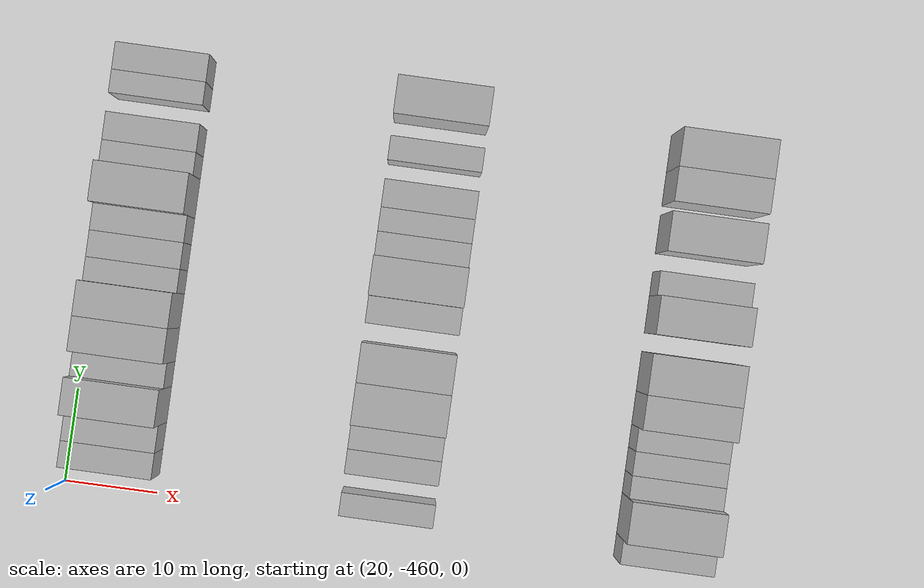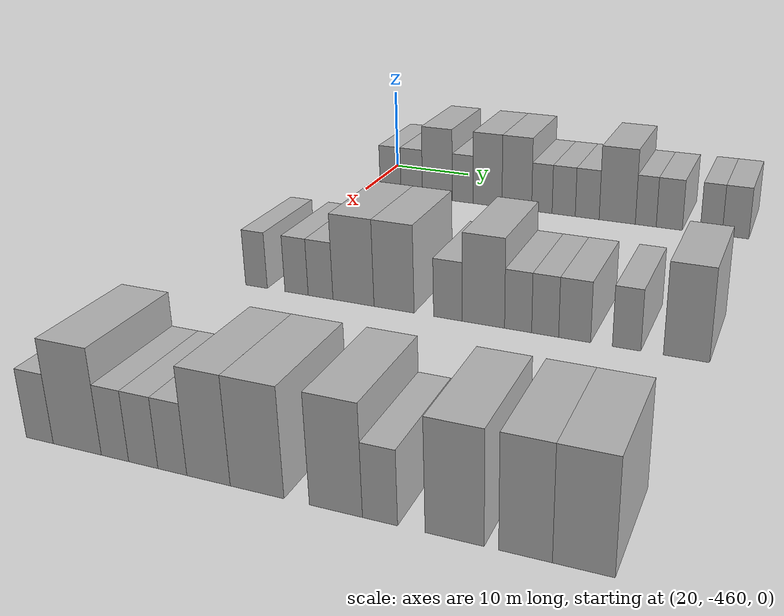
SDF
<sdf version="1.6">
 <world name="default">
  <model name="building_1">
   <static>1</static>
   <pose>25.0000 -456.5878 0 0.000000 0.000000 0.000000</pose>
   <link name="link">
    <pose>0 0 3.00 0 0 0</pose>
    <collision name="collision"><geometry><box><size>10.0000 2.8245 6.0000</size></box></geometry></collision>
    <visual name="visual">
     <cast_shadows>0</cast_shadows>
     <geometry><box><size>10.0000 2.8245 6.0000</size></box></geometry>
     <material>
      <script>
       <uri>model://HANNAS_wall/materials/scripts</uri>
       <uri>model://HANNAS_wall/materials/textures</uri>
       <name>vrc/HANNAS_wall</name>
      </script>
     </material>
    </visual>
   </link>
  </model>
  <model name="building_2">
   <static>1</static>
   <pose>25.0000 -453.7290 0 0.000000 0.000000 0.000000</pose>
   <link name="link">
    <pose>0 0 3.00 0 0 0</pose>
    <collision name="collision"><geometry><box><size>10.0000 2.8931 6.0000</size></box></geometry></collision>
    <visual name="visual">
     <cast_shadows>0</cast_shadows>
     <geometry><box><size>10.0000 2.8931 6.0000</size></box></geometry>
     <material>
      <script>
       <uri>model://HANNAS_wall/materials/scripts</uri>
       <uri>model://HANNAS_wall/materials/textures</uri>
       <name>vrc/HANNAS_wall</name>
      </script>
     </material>
    </visual>
   </link>
  </model>
  <model name="building_3">
   <static>1</static>
   <pose>25.0000 -450.3081 0 0.000000 0.000000 0.000000</pose>
   <link name="link">
    <pose>0 0 4.50 0 0 0</pose>
    <collision name="collision"><geometry><box><size>10.0000 3.9486 9.0000</size></box></geometry></collision>
    <visual name="visual">
     <cast_shadows>0</cast_shadows>
     <geometry><box><size>10.0000 3.9486 9.0000</size></box></geometry>
     <material>
      <script>
       <uri>model://HANNAS_wall/materials/scripts</uri>
       <uri>model://HANNAS_wall/materials/textures</uri>
       <name>vrc/HANNAS_wall</name>
      </script>
     </material>
    </visual>
   </link>
  </model>
  <model name="building_4">
   <static>1</static>
   <pose>25.0000 -446.9821 0 0.000000 0.000000 0.000000</pose>
   <link name="link">
    <pose>0 0 3.00 0 0 0</pose>
    <collision name="collision"><geometry><box><size>10.0000 2.7034 6.0000</size></box></geometry></collision>
    <visual name="visual">
     <cast_shadows>0</cast_shadows>
     <geometry><box><size>10.0000 2.7034 6.0000</size></box></geometry>
     <material>
      <script>
       <uri>model://HANNAS_wall/materials/scripts</uri>
       <uri>model://HANNAS_wall/materials/textures</uri>
       <name>vrc/HANNAS_wall</name>
      </script>
     </material>
    </visual>
   </link>
  </model>
  <model name="building_5">
   <static>1</static>
   <pose>25.0000 -443.7848 0 0.000000 0.000000 0.000000</pose>
   <link name="link">
    <pose>0 0 4.50 0 0 0</pose>
    <collision name="collision"><geometry><box><size>10.0000 3.6912 9.0000</size></box></geometry></collision>
    <visual name="visual">
     <cast_shadows>0</cast_shadows>
     <geometry><box><size>10.0000 3.6912 9.0000</size></box></geometry>
     <material>
      <script>
       <uri>model://HANNAS_wall/materials/scripts</uri>
       <uri>model://HANNAS_wall/materials/textures</uri>
       <name>vrc/HANNAS_wall</name>
      </script>
     </material>
    </visual>
   </link>
  </model>
  <model name="building_6">
   <static>1</static>
   <pose>25.0000 -440.0766 0 0.000000 0.000000 0.000000</pose>
   <link name="link">
    <pose>0 0 4.50 0 0 0</pose>
    <collision name="collision"><geometry><box><size>10.0000 3.7251 9.0000</size></box></geometry></collision>
    <visual name="visual">
     <cast_shadows>0</cast_shadows>
     <geometry><box><size>10.0000 3.7251 9.0000</size></box></geometry>
     <material>
      <script>
       <uri>model://HANNAS_wall/materials/scripts</uri>
       <uri>model://HANNAS_wall/materials/textures</uri>
       <name>vrc/HANNAS_wall</name>
      </script>
     </material>
    </visual>
   </link>
  </model>
  <model name="building_7">
   <static>1</static>
   <pose>25.0000 -436.9483 0 0.000000 0.000000 0.000000</pose>
   <link name="link">
    <pose>0 0 3.00 0 0 0</pose>
    <collision name="collision"><geometry><box><size>10.0000 2.5317 6.0000</size></box></geometry></collision>
    <visual name="visual">
     <cast_shadows>0</cast_shadows>
     <geometry><box><size>10.0000 2.5317 6.0000</size></box></geometry>
     <material>
      <script>
       <uri>model://HANNAS_wall/materials/scripts</uri>
       <uri>model://HANNAS_wall/materials/textures</uri>
       <name>vrc/HANNAS_wall</name>
      </script>
     </material>
    </visual>
   </link>
  </model>
  <model name="building_8">
   <static>1</static>
   <pose>25.0000 -434.2681 0 0.000000 0.000000 0.000000</pose>
   <link name="link">
    <pose>0 0 3.00 0 0 0</pose>
    <collision name="collision"><geometry><box><size>10.0000 2.8287 6.0000</size></box></geometry></collision>
    <visual name="visual">
     <cast_shadows>0</cast_shadows>
     <geometry><box><size>10.0000 2.8287 6.0000</size></box></geometry>
     <material>
      <script>
       <uri>model://HANNAS_wall/materials/scripts</uri>
       <uri>model://HANNAS_wall/materials/textures</uri>
       <name>vrc/HANNAS_wall</name>
      </script>
     </material>
    </visual>
   </link>
  </model>
  <model name="building_9">
   <static>1</static>
   <pose>25.0000 -431.4158 0 0.000000 0.000000 0.000000</pose>
   <link name="link">
    <pose>0 0 3.00 0 0 0</pose>
    <collision name="collision"><geometry><box><size>10.0000 2.8757 6.0000</size></box></geometry></collision>
    <visual name="visual">
     <cast_shadows>0</cast_shadows>
     <geometry><box><size>10.0000 2.8757 6.0000</size></box></geometry>
     <material>
      <script>
       <uri>model://HANNAS_wall/materials/scripts</uri>
       <uri>model://HANNAS_wall/materials/textures</uri>
       <name>vrc/HANNAS_wall</name>
      </script>
     </material>
    </visual>
   </link>
  </model>
  <model name="building_10">
   <static>1</static>
   <pose>25.0000 -427.8407 0 0.000000 0.000000 0.000000</pose>
   <link name="link">
    <pose>0 0 4.50 0 0 0</pose>
    <collision name="collision"><geometry><box><size>10.0000 4.2745 9.0000</size></box></geometry></collision>
    <visual name="visual">
     <cast_shadows>0</cast_shadows>
     <geometry><box><size>10.0000 4.2745 9.0000</size></box></geometry>
     <material>
      <script>
       <uri>model://HANNAS_wall/materials/scripts</uri>
       <uri>model://HANNAS_wall/materials/textures</uri>
       <name>vrc/HANNAS_wall</name>
      </script>
     </material>
    </visual>
   </link>
  </model>
  <model name="building_11">
   <static>1</static>
   <pose>25.0000 -424.4925 0 0.000000 0.000000 0.000000</pose>
   <link name="link">
    <pose>0 0 3.00 0 0 0</pose>
    <collision name="collision"><geometry><box><size>10.0000 2.4220 6.0000</size></box></geometry></collision>
    <visual name="visual">
     <cast_shadows>0</cast_shadows>
     <geometry><box><size>10.0000 2.4220 6.0000</size></box></geometry>
     <material>
      <script>
       <uri>model://HANNAS_wall/materials/scripts</uri>
       <uri>model://HANNAS_wall/materials/textures</uri>
       <name>vrc/HANNAS_wall</name>
      </script>
     </material>
    </visual>
   </link>
  </model>
  <model name="building_12">
   <static>1</static>
   <pose>25.0000 -421.7866 0 0.000000 0.000000 0.000000</pose>
   <link name="link">
    <pose>0 0 3.00 0 0 0</pose>
    <collision name="collision"><geometry><box><size>10.0000 2.9898 6.0000</size></box></geometry></collision>
    <visual name="visual">
     <cast_shadows>0</cast_shadows>
     <geometry><box><size>10.0000 2.9898 6.0000</size></box></geometry>
     <material>
      <script>
       <uri>model://HANNAS_wall/materials/scripts</uri>
       <uri>model://HANNAS_wall/materials/textures</uri>
       <name>vrc/HANNAS_wall</name>
      </script>
     </material>
    </visual>
   </link>
  </model>
  <model name="building_13">
   <static>1</static>
   <pose>25.0000 -417.0590 0 0.000000 0.000000 0.000000</pose>
   <link name="link">
    <pose>0 0 3.00 0 0 0</pose>
    <collision name="collision"><geometry><box><size>10.0000 2.4655 6.0000</size></box></geometry></collision>
    <visual name="visual">
     <cast_shadows>0</cast_shadows>
     <geometry><box><size>10.0000 2.4655 6.0000</size></box></geometry>
     <material>
      <script>
       <uri>model://HANNAS_wall/materials/scripts</uri>
       <uri>model://HANNAS_wall/materials/textures</uri>
       <name>vrc/HANNAS_wall</name>
      </script>
     </material>
    </visual>
   </link>
  </model>
  <model name="building_14">
   <static>1</static>
   <pose>25.0000 -414.3582 0 0.000000 0.000000 0.000000</pose>
   <link name="link">
    <pose>0 0 3.00 0 0 0</pose>
    <collision name="collision"><geometry><box><size>10.0000 2.9362 6.0000</size></box></geometry></collision>
    <visual name="visual">
     <cast_shadows>0</cast_shadows>
     <geometry><box><size>10.0000 2.9362 6.0000</size></box></geometry>
     <material>
      <script>
       <uri>model://HANNAS_wall/materials/scripts</uri>
       <uri>model://HANNAS_wall/materials/textures</uri>
       <name>vrc/HANNAS_wall</name>
      </script>
     </material>
    </visual>
   </link>
  </model>
  <model name="building_240">
   <static>1</static>
   <pose>55.0000 -457.7602 0 0.000000 0.000000 0.000000</pose>
   <link name="link">
    <pose>0 0 3.00 0 0 0</pose>
    <collision name="collision"><geometry><box><size>10.0000 2.4796 6.0000</size></box></geometry></collision>
    <visual name="visual">
     <cast_shadows>0</cast_shadows>
     <geometry><box><size>10.0000 2.4796 6.0000</size></box></geometry>
     <material>
      <script>
       <uri>model://HANNAS_wall/materials/scripts</uri>
       <uri>model://HANNAS_wall/materials/textures</uri>
       <name>vrc/HANNAS_wall</name>
      </script>
     </material>
    </visual>
   </link>
  </model>
  <model name="building_241">
   <static>1</static>
   <pose>55.0000 -453.2183 0 0.000000 0.000000 0.000000</pose>
   <link name="link">
    <pose>0 0 3.00 0 0 0</pose>
    <collision name="collision"><geometry><box><size>10.0000 2.6042 6.0000</size></box></geometry></collision>
    <visual name="visual">
     <cast_shadows>0</cast_shadows>
     <geometry><box><size>10.0000 2.6042 6.0000</size></box></geometry>
     <material>
      <script>
       <uri>model://HANNAS_wall/materials/scripts</uri>
       <uri>model://HANNAS_wall/materials/textures</uri>
       <name>vrc/HANNAS_wall</name>
      </script>
     </material>
    </visual>
   </link>
  </model>
  <model name="building_242">
   <static>1</static>
   <pose>55.0000 -450.5517 0 0.000000 0.000000 0.000000</pose>
   <link name="link">
    <pose>0 0 3.00 0 0 0</pose>
    <collision name="collision"><geometry><box><size>10.0000 2.7290 6.0000</size></box></geometry></collision>
    <visual name="visual">
     <cast_shadows>0</cast_shadows>
     <geometry><box><size>10.0000 2.7290 6.0000</size></box></geometry>
     <material>
      <script>
       <uri>model://HANNAS_wall/materials/scripts</uri>
       <uri>model://HANNAS_wall/materials/textures</uri>
       <name>vrc/HANNAS_wall</name>
      </script>
     </material>
    </visual>
   </link>
  </model>
  <model name="building_243">
   <static>1</static>
   <pose>55.0000 -446.9739 0 0.000000 0.000000 0.000000</pose>
   <link name="link">
    <pose>0 0 4.50 0 0 0</pose>
    <collision name="collision"><geometry><box><size>10.0000 4.4268 9.0000</size></box></geometry></collision>
    <visual name="visual">
     <cast_shadows>0</cast_shadows>
     <geometry><box><size>10.0000 4.4268 9.0000</size></box></geometry>
     <material>
      <script>
       <uri>model://HANNAS_wall/materials/scripts</uri>
       <uri>model://HANNAS_wall/materials/textures</uri>
       <name>vrc/HANNAS_wall</name>
      </script>
     </material>
    </visual>
   </link>
  </model>
  <model name="building_244">
   <static>1</static>
   <pose>55.0000 -442.6541 0 0.000000 0.000000 0.000000</pose>
   <link name="link">
    <pose>0 0 4.50 0 0 0</pose>
    <collision name="collision"><geometry><box><size>10.0000 4.2127 9.0000</size></box></geometry></collision>
    <visual name="visual">
     <cast_shadows>0</cast_shadows>
     <geometry><box><size>10.0000 4.2127 9.0000</size></box></geometry>
     <material>
      <script>
       <uri>model://HANNAS_wall/materials/scripts</uri>
       <uri>model://HANNAS_wall/materials/textures</uri>
       <name>vrc/HANNAS_wall</name>
      </script>
     </material>
    </visual>
   </link>
  </model>
  <model name="building_245">
   <static>1</static>
   <pose>55.0000 -437.0961 0 0.000000 0.000000 0.000000</pose>
   <link name="link">
    <pose>0 0 3.00 0 0 0</pose>
    <collision name="collision"><geometry><box><size>10.0000 2.9034 6.0000</size></box></geometry></collision>
    <visual name="visual">
     <cast_shadows>0</cast_shadows>
     <geometry><box><size>10.0000 2.9034 6.0000</size></box></geometry>
     <material>
      <script>
       <uri>model://HANNAS_wall/materials/scripts</uri>
       <uri>model://HANNAS_wall/materials/textures</uri>
       <name>vrc/HANNAS_wall</name>
      </script>
     </material>
    </visual>
   </link>
  </model>
  <model name="building_246">
   <static>1</static>
   <pose>55.0000 -433.5494 0 0.000000 0.000000 0.000000</pose>
   <link name="link">
    <pose>0 0 4.50 0 0 0</pose>
    <collision name="collision"><geometry><box><size>10.0000 4.1899 9.0000</size></box></geometry></collision>
    <visual name="visual">
     <cast_shadows>0</cast_shadows>
     <geometry><box><size>10.0000 4.1899 9.0000</size></box></geometry>
     <material>
      <script>
       <uri>model://HANNAS_wall/materials/scripts</uri>
       <uri>model://HANNAS_wall/materials/textures</uri>
       <name>vrc/HANNAS_wall</name>
      </script>
     </material>
    </visual>
   </link>
  </model>
  <model name="building_247">
   <static>1</static>
   <pose>55.0000 -430.1438 0 0.000000 0.000000 0.000000</pose>
   <link name="link">
    <pose>0 0 3.00 0 0 0</pose>
    <collision name="collision"><geometry><box><size>10.0000 2.6214 6.0000</size></box></geometry></collision>
    <visual name="visual">
     <cast_shadows>0</cast_shadows>
     <geometry><box><size>10.0000 2.6214 6.0000</size></box></geometry>
     <material>
      <script>
       <uri>model://HANNAS_wall/materials/scripts</uri>
       <uri>model://HANNAS_wall/materials/textures</uri>
       <name>vrc/HANNAS_wall</name>
      </script>
     </material>
    </visual>
   </link>
  </model>
  <model name="building_248">
   <static>1</static>
   <pose>55.0000 -427.5492 0 0.000000 0.000000 0.000000</pose>
   <link name="link">
    <pose>0 0 3.00 0 0 0</pose>
    <collision name="collision"><geometry><box><size>10.0000 2.5678 6.0000</size></box></geometry></collision>
    <visual name="visual">
     <cast_shadows>0</cast_shadows>
     <geometry><box><size>10.0000 2.5678 6.0000</size></box></geometry>
     <material>
      <script>
       <uri>model://HANNAS_wall/materials/scripts</uri>
       <uri>model://HANNAS_wall/materials/textures</uri>
       <name>vrc/HANNAS_wall</name>
      </script>
     </material>
    </visual>
   </link>
  </model>
  <model name="building_249">
   <static>1</static>
   <pose>55.0000 -424.7708 0 0.000000 0.000000 0.000000</pose>
   <link name="link">
    <pose>0 0 3.00 0 0 0</pose>
    <collision name="collision"><geometry><box><size>10.0000 2.9891 6.0000</size></box></geometry></collision>
    <visual name="visual">
     <cast_shadows>0</cast_shadows>
     <geometry><box><size>10.0000 2.9891 6.0000</size></box></geometry>
     <material>
      <script>
       <uri>model://HANNAS_wall/materials/scripts</uri>
       <uri>model://HANNAS_wall/materials/textures</uri>
       <name>vrc/HANNAS_wall</name>
      </script>
     </material>
    </visual>
   </link>
  </model>
  <model name="building_250">
   <static>1</static>
   <pose>55.0000 -419.9841 0 0.000000 0.000000 0.000000</pose>
   <link name="link">
    <pose>0 0 3.00 0 0 0</pose>
    <collision name="collision"><geometry><box><size>10.0000 2.5843 6.0000</size></box></geometry></collision>
    <visual name="visual">
     <cast_shadows>0</cast_shadows>
     <geometry><box><size>10.0000 2.5843 6.0000</size></box></geometry>
     <material>
      <script>
       <uri>model://HANNAS_wall/materials/scripts</uri>
       <uri>model://HANNAS_wall/materials/textures</uri>
       <name>vrc/HANNAS_wall</name>
      </script>
     </material>
    </visual>
   </link>
  </model>
  <model name="building_251">
   <static>1</static>
   <pose>55.0000 -414.6680 0 0.000000 0.000000 0.000000</pose>
   <link name="link">
    <pose>0 0 4.50 0 0 0</pose>
    <collision name="collision"><geometry><box><size>10.0000 4.0478 9.0000</size></box></geometry></collision>
    <visual name="visual">
     <cast_shadows>0</cast_shadows>
     <geometry><box><size>10.0000 4.0478 9.0000</size></box></geometry>
     <material>
      <script>
       <uri>model://HANNAS_wall/materials/scripts</uri>
       <uri>model://HANNAS_wall/materials/textures</uri>
       <name>vrc/HANNAS_wall</name>
      </script>
     </material>
    </visual>
   </link>
  </model>
  <model name="building_479">
   <static>1</static>
   <pose>85.0000 -458.7347 0 0.000000 0.000000 0.000000</pose>
   <link name="link">
    <pose>0 0 3.00 0 0 0</pose>
    <collision name="collision"><geometry><box><size>10.0000 2.5305 6.0000</size></box></geometry></collision>
    <visual name="visual">
     <cast_shadows>0</cast_shadows>
     <geometry><box><size>10.0000 2.5305 6.0000</size></box></geometry>
     <material>
      <script>
       <uri>model://HANNAS_wall/materials/scripts</uri>
       <uri>model://HANNAS_wall/materials/textures</uri>
       <name>vrc/HANNAS_wall</name>
      </script>
     </material>
    </visual>
   </link>
  </model>
  <model name="building_480">
   <static>1</static>
   <pose>85.0000 -455.2579 0 0.000000 0.000000 0.000000</pose>
   <link name="link">
    <pose>0 0 4.50 0 0 0</pose>
    <collision name="collision"><geometry><box><size>10.0000 4.4231 9.0000</size></box></geometry></collision>
    <visual name="visual">
     <cast_shadows>0</cast_shadows>
     <geometry><box><size>10.0000 4.4231 9.0000</size></box></geometry>
     <material>
      <script>
       <uri>model://HANNAS_wall/materials/scripts</uri>
       <uri>model://HANNAS_wall/materials/textures</uri>
       <name>vrc/HANNAS_wall</name>
      </script>
     </material>
    </visual>
   </link>
  </model>
  <model name="building_481">
   <static>1</static>
   <pose>85.0000 -451.8257 0 0.000000 0.000000 0.000000</pose>
   <link name="link">
    <pose>0 0 3.00 0 0 0</pose>
    <collision name="collision"><geometry><box><size>10.0000 2.4412 6.0000</size></box></geometry></collision>
    <visual name="visual">
     <cast_shadows>0</cast_shadows>
     <geometry><box><size>10.0000 2.4412 6.0000</size></box></geometry>
     <material>
      <script>
       <uri>model://HANNAS_wall/materials/scripts</uri>
       <uri>model://HANNAS_wall/materials/textures</uri>
       <name>vrc/HANNAS_wall</name>
      </script>
     </material>
    </visual>
   </link>
  </model>
  <model name="building_482">
   <static>1</static>
   <pose>85.0000 -449.3230 0 0.000000 0.000000 0.000000</pose>
   <link name="link">
    <pose>0 0 3.00 0 0 0</pose>
    <collision name="collision"><geometry><box><size>10.0000 2.5644 6.0000</size></box></geometry></collision>
    <visual name="visual">
     <cast_shadows>0</cast_shadows>
     <geometry><box><size>10.0000 2.5644 6.0000</size></box></geometry>
     <material>
      <script>
       <uri>model://HANNAS_wall/materials/scripts</uri>
       <uri>model://HANNAS_wall/materials/textures</uri>
       <name>vrc/HANNAS_wall</name>
      </script>
     </material>
    </visual>
   </link>
  </model>
  <model name="building_483">
   <static>1</static>
   <pose>85.0000 -446.7998 0 0.000000 0.000000 0.000000</pose>
   <link name="link">
    <pose>0 0 3.00 0 0 0</pose>
    <collision name="collision"><geometry><box><size>10.0000 2.4819 6.0000</size></box></geometry></collision>
    <visual name="visual">
     <cast_shadows>0</cast_shadows>
     <geometry><box><size>10.0000 2.4819 6.0000</size></box></geometry>
     <material>
      <script>
       <uri>model://HANNAS_wall/materials/scripts</uri>
       <uri>model://HANNAS_wall/materials/textures</uri>
       <name>vrc/HANNAS_wall</name>
      </script>
     </material>
    </visual>
   </link>
  </model>
  <model name="building_484">
   <static>1</static>
   <pose>85.0000 -443.7441 0 0.000000 0.000000 0.000000</pose>
   <link name="link">
    <pose>0 0 4.50 0 0 0</pose>
    <collision name="collision"><geometry><box><size>10.0000 3.6295 9.0000</size></box></geometry></collision>
    <visual name="visual">
     <cast_shadows>0</cast_shadows>
     <geometry><box><size>10.0000 3.6295 9.0000</size></box></geometry>
     <material>
      <script>
       <uri>model://HANNAS_wall/materials/scripts</uri>
       <uri>model://HANNAS_wall/materials/textures</uri>
       <name>vrc/HANNAS_wall</name>
      </script>
     </material>
    </visual>
   </link>
  </model>
  <model name="building_485">
   <static>1</static>
   <pose>85.0000 -439.7556 0 0.000000 0.000000 0.000000</pose>
   <link name="link">
    <pose>0 0 4.50 0 0 0</pose>
    <collision name="collision"><geometry><box><size>10.0000 4.3473 9.0000</size></box></geometry></collision>
    <visual name="visual">
     <cast_shadows>0</cast_shadows>
     <geometry><box><size>10.0000 4.3473 9.0000</size></box></geometry>
     <material>
      <script>
       <uri>model://HANNAS_wall/materials/scripts</uri>
       <uri>model://HANNAS_wall/materials/textures</uri>
       <name>vrc/HANNAS_wall</name>
      </script>
     </material>
    </visual>
   </link>
  </model>
  <model name="building_486">
   <static>1</static>
   <pose>85.0000 -433.5477 0 0.000000 0.000000 0.000000</pose>
   <link name="link">
    <pose>0 0 4.50 0 0 0</pose>
    <collision name="collision"><geometry><box><size>10.0000 4.0685 9.0000</size></box></geometry></collision>
    <visual name="visual">
     <cast_shadows>0</cast_shadows>
     <geometry><box><size>10.0000 4.0685 9.0000</size></box></geometry>
     <material>
      <script>
       <uri>model://HANNAS_wall/materials/scripts</uri>
       <uri>model://HANNAS_wall/materials/textures</uri>
       <name>vrc/HANNAS_wall</name>
      </script>
     </material>
    </visual>
   </link>
  </model>
  <model name="building_487">
   <static>1</static>
   <pose>85.0000 -430.2057 0 0.000000 0.000000 0.000000</pose>
   <link name="link">
    <pose>0 0 3.00 0 0 0</pose>
    <collision name="collision"><geometry><box><size>10.0000 2.6156 6.0000</size></box></geometry></collision>
    <visual name="visual">
     <cast_shadows>0</cast_shadows>
     <geometry><box><size>10.0000 2.6156 6.0000</size></box></geometry>
     <material>
      <script>
       <uri>model://HANNAS_wall/materials/scripts</uri>
       <uri>model://HANNAS_wall/materials/textures</uri>
       <name>vrc/HANNAS_wall</name>
      </script>
     </material>
    </visual>
   </link>
  </model>
  <model name="building_488">
   <static>1</static>
   <pose>85.0000 -424.8019 0 0.000000 0.000000 0.000000</pose>
   <link name="link">
    <pose>0 0 4.50 0 0 0</pose>
    <collision name="collision"><geometry><box><size>10.0000 4.1919 9.0000</size></box></geometry></collision>
    <visual name="visual">
     <cast_shadows>0</cast_shadows>
     <geometry><box><size>10.0000 4.1919 9.0000</size></box></geometry>
     <material>
      <script>
       <uri>model://HANNAS_wall/materials/scripts</uri>
       <uri>model://HANNAS_wall/materials/textures</uri>
       <name>vrc/HANNAS_wall</name>
      </script>
     </material>
    </visual>
   </link>
  </model>
  <model name="building_489">
   <static>1</static>
   <pose>85.0000 -419.8861 0 0.000000 0.000000 0.000000</pose>
   <link name="link">
    <pose>0 0 4.50 0 0 0</pose>
    <collision name="collision"><geometry><box><size>10.0000 3.6397 9.0000</size></box></geometry></collision>
    <visual name="visual">
     <cast_shadows>0</cast_shadows>
     <geometry><box><size>10.0000 3.6397 9.0000</size></box></geometry>
     <material>
      <script>
       <uri>model://HANNAS_wall/materials/scripts</uri>
       <uri>model://HANNAS_wall/materials/textures</uri>
       <name>vrc/HANNAS_wall</name>
      </script>
     </material>
    </visual>
   </link>
  </model>
  <model name="building_490">
   <static>1</static>
   <pose>85.0000 -416.0110 0 0.000000 0.000000 0.000000</pose>
   <link name="link">
    <pose>0 0 4.50 0 0 0</pose>
    <collision name="collision"><geometry><box><size>10.0000 4.1106 9.0000</size></box></geometry></collision>
    <visual name="visual">
     <cast_shadows>0</cast_shadows>
     <geometry><box><size>10.0000 4.1106 9.0000</size></box></geometry>
     <material>
      <script>
       <uri>model://HANNAS_wall/materials/scripts</uri>
       <uri>model://HANNAS_wall/materials/textures</uri>
       <name>vrc/HANNAS_wall</name>
      </script>
     </material>
    </visual>
   </link>
  </model>
 </world>
</sdf>
